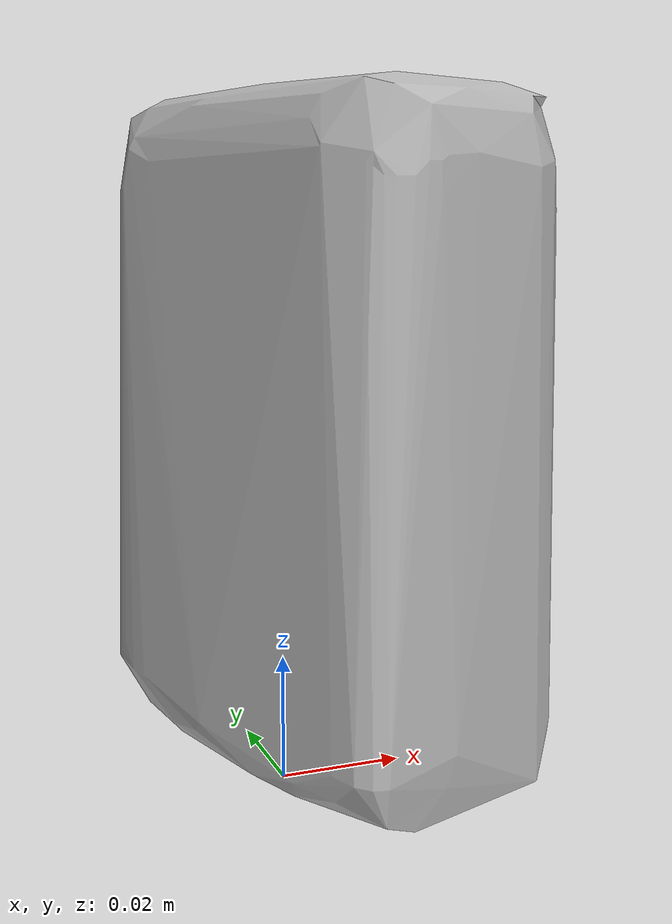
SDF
<?xml version='1.0'?>
<sdf version="1.4">
  <model name="band_aid_clear_strips">
    <static>false</static>
    <link name="link">
      <inertial>
        <pose>0.006303038571567271 0.0022199448945388425 0.05258034169526176 3.117659660143403 -0.008131496811526735 -2.8703343682674918</pose>
        <mass>0.034060539105154275</mass>
        <inertia>
          <ixx>4.365321545936413e-05</ixx>
          <ixy>1.1713522947731771e-21</ixy>
          <ixz>8.2838200234602e-23</ixz>
          <iyy>3.351622553224663e-05</iyy>
          <iyz>-9.776170583551115e-23</iyz>
          <izz>2.155827961164059e-05</izz>
        </inertia>
      </inertial>
      <collision name="collision">
        <geometry>
          <mesh>
            <!-- Use a downsampled mesh for collisions -->
            <uri>model:///band_aid_clear_strips/band_aid_clear_strips_250_collision.obj</uri>
	        </mesh>
        </geometry>
        <surface>
      </surface>
      </collision>
      <visual name="visual">
        <geometry>
          <mesh>
            <uri>model:///band_aid_clear_strips/optimized_tsdf_texture_mapped_mesh.obj</uri>
	        </mesh>
        </geometry>
        <material>
          <script>
            <uri>model:///band_aid_clear_strips/band_aid_clear_strips.material</uri>
            <name>band_aid_clear_strips</name>
          </script>
        </material>
      </visual>
    </link>
  </model>
</sdf>
